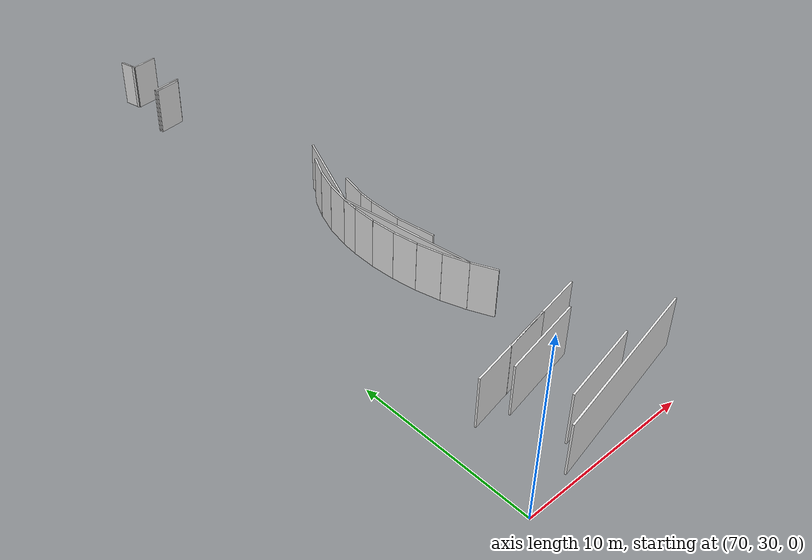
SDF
<sdf version="1.6">
 <world name="default">
  <model name="wall_78.1_50.1">
   <static>true</static>
   <pose>78.11000000001513 50.10499999998137 1.5 0 0 1.3352513460828392</pose>
   <link name="link">
    <visual name="visual">
     <geometry><box><size>1.7996944185017383 0.1 3</size></box></geometry>
     <material>
      <script><uri>file://media/materials/scripts/gazebo.material</uri><name>Gazebo/White</name></script>
     </material>
    </visual>
   </link>
  </model>
  <model name="wall_77.9_45.0">
   <static>true</static>
   <pose>77.91500000000815 45.0 1.5 0 0 1.7025079936748562</pose>
   <link name="link">
    <visual name="visual">
     <geometry><box><size>2.360444873175644 0.1 3</size></box></geometry>
     <material>
      <script><uri>file://media/materials/scripts/gazebo.material</uri><name>Gazebo/White</name></script>
     </material>
    </visual>
   </link>
  </model>
  <model name="wall_77.8_47.2">
   <static>true</static>
   <pose>77.77999999999884 47.21499999985099 1.5 0 0 1.5516599071002037</pose>
   <link name="link">
    <visual name="visual">
     <geometry><box><size>2.090382739924786 0.1 3</size></box></geometry>
     <material>
      <script><uri>file://media/materials/scripts/gazebo.material</uri><name>Gazebo/White</name></script>
     </material>
    </visual>
   </link>
  </model>
  <model name="wall_77.9_48.7">
   <static>true</static>
   <pose>77.85000000000582 48.74499999987893 1.5 0 0 1.4680664593621482</pose>
   <link name="link">
    <visual name="visual">
     <geometry><box><size>0.9751410156507998 0.1 3</size></box></geometry>
     <material>
      <script><uri>file://media/materials/scripts/gazebo.material</uri><name>Gazebo/White</name></script>
     </material>
    </visual>
   </link>
  </model>
  <model name="wall_76.6_71.3">
   <static>true</static>
   <pose>76.56999999997788 71.3499999998603 1.5 0 0 -1.3694792184051279</pose>
   <link name="link">
    <visual name="visual">
     <geometry><box><size>1.0001999799880765 0.1 3</size></box></geometry>
     <material>
      <script><uri>file://media/materials/scripts/gazebo.material</uri><name>Gazebo/White</name></script>
     </material>
    </visual>
   </link>
  </model>
  <model name="wall_76.7_70.8">
   <static>true</static>
   <pose>76.69000000000233 70.76499999989755 1.5 0 0 -1.3633001001126588</pose>
   <link name="link">
    <visual name="visual">
     <geometry><box><size>0.19416487834246976 0.1 3</size></box></geometry>
     <material>
      <script><uri>file://media/materials/scripts/gazebo.material</uri><name>Gazebo/White</name></script>
     </material>
    </visual>
   </link>
  </model>
  <model name="wall_77.6_70.8">
   <static>true</static>
   <pose>77.57000000000698 70.83999999985099 1.5 0 0 0.1951584270363837</pose>
   <link name="link">
    <visual name="visual">
     <geometry><box><size>1.7532826354591435 0.1 3</size></box></geometry>
     <material>
      <script><uri>file://media/materials/scripts/gazebo.material</uri><name>Gazebo/White</name></script>
     </material>
    </visual>
   </link>
  </model>
  <model name="wall_76.9_67.2">
   <static>true</static>
   <pose>76.94999999998254 67.18999999994412 1.5 0 0 -2.9481653269346513</pose>
   <link name="link">
    <visual name="visual">
     <geometry><box><size>1.976866206885053 0.1 3</size></box></geometry>
     <material>
      <script><uri>file://media/materials/scripts/gazebo.material</uri><name>Gazebo/White</name></script>
     </material>
    </visual>
   </link>
  </model>
  <model name="wall_76.9_32.1">
   <static>true</static>
   <pose>76.87999999997555 32.14500000001863 1.5 0 0 -2.948381169699356</pose>
   <link name="link">
    <visual name="visual">
     <geometry><box><size>5.155938323954138 0.1 3</size></box></geometry>
     <material>
      <script><uri>file://media/materials/scripts/gazebo.material</uri><name>Gazebo/White</name></script>
     </material>
    </visual>
   </link>
  </model>
  <model name="wall_76.3_35.0">
   <static>true</static>
   <pose>76.31500000000233 34.97500000009313 1.5 0 0 0.1935846027304586</pose>
   <link name="link">
    <visual name="visual">
     <geometry><box><size>5.146124755669345 0.1 3</size></box></geometry>
     <material>
      <script><uri>file://media/materials/scripts/gazebo.material</uri><name>Gazebo/White</name></script>
     </material>
    </visual>
   </link>
  </model>
  <model name="wall_76.9_67.0">
   <static>true</static>
   <pose>76.90000000002328 66.96999999997206 1.5 0 0 0.19297081014186676</pose>
   <link name="link">
    <visual name="visual">
     <geometry><box><size>1.77290721702601 0.1 3</size></box></geometry>
     <material>
      <script><uri>file://media/materials/scripts/gazebo.material</uri><name>Gazebo/White</name></script>
     </material>
    </visual>
   </link>
  </model>
  <model name="wall_78.0_53.0">
   <static>true</static>
   <pose>78.0 53.02000000001863 1.5 0 0 -2.0286300478758363</pose>
   <link name="link">
    <visual name="visual">
     <geometry><box><size>1.538440769012967 0.1 3</size></box></geometry>
     <material>
      <script><uri>file://media/materials/scripts/gazebo.material</uri><name>Gazebo/White</name></script>
     </material>
    </visual>
   </link>
  </model>
  <model name="wall_77.4_51.6">
   <static>true</static>
   <pose>77.40499999999884 51.610000000102445 1.5 0 0 -1.9111782654188452</pose>
   <link name="link">
    <visual name="visual">
     <geometry><box><size>1.527645246707885 0.1 3</size></box></geometry>
     <material>
      <script><uri>file://media/materials/scripts/gazebo.material</uri><name>Gazebo/White</name></script>
     </material>
    </visual>
   </link>
  </model>
  <model name="wall_77.0_50.1">
   <static>true</static>
   <pose>76.98500000001513 50.140000000130385 1.5 0 0 -1.7873466317813498</pose>
   <link name="link">
    <visual name="visual">
     <geometry><box><size>1.5358710883439264 0.1 3</size></box></geometry>
     <material>
      <script><uri>file://media/materials/scripts/gazebo.material</uri><name>Gazebo/White</name></script>
     </material>
    </visual>
   </link>
  </model>
  <model name="wall_76.8_48.9">
   <static>true</static>
   <pose>76.76000000000931 48.875 1.5 0 0 -1.6867783112416597</pose>
   <link name="link">
    <visual name="visual">
     <geometry><box><size>1.0369667306794703 0.1 3</size></box></geometry>
     <material>
      <script><uri>file://media/materials/scripts/gazebo.material</uri><name>Gazebo/White</name></script>
     </material>
    </visual>
   </link>
  </model>
  <model name="wall_76.7_47.6">
   <static>true</static>
   <pose>76.6700000000128 47.61499999999069 1.5 0 0 -1.6110430385750105</pose>
   <link name="link">
    <visual name="visual">
     <geometry><box><size>1.4912075641164553 0.1 3</size></box></geometry>
     <material>
      <script><uri>file://media/materials/scripts/gazebo.material</uri><name>Gazebo/White</name></script>
     </material>
    </visual>
   </link>
  </model>
  <model name="wall_76.7_46.1">
   <static>true</static>
   <pose>76.67999999999302 46.11499999999069 1.5 0 0 -1.5178656809449116</pose>
   <link name="link">
    <visual name="visual">
     <geometry><box><size>1.5121177205246188 0.1 3</size></box></geometry>
     <material>
      <script><uri>file://media/materials/scripts/gazebo.material</uri><name>Gazebo/White</name></script>
     </material>
    </visual>
   </link>
  </model>
  <model name="wall_76.8_44.6">
   <static>true</static>
   <pose>76.8299999999872 44.609999999869615 1.5 0 0 -1.4251679462043203</pose>
   <link name="link">
    <visual name="visual">
     <geometry><box><size>1.5160474926641705 0.1 3</size></box></geometry>
     <material>
      <script><uri>file://media/materials/scripts/gazebo.material</uri><name>Gazebo/White</name></script>
     </material>
    </visual>
   </link>
  </model>
  <model name="wall_77.1_43.1">
   <static>true</static>
   <pose>77.11999999999534 43.125 1.5 0 0 -1.3306253189027035</pose>
   <link name="link">
    <visual name="visual">
     <geometry><box><size>1.513439790418924 0.1 3</size></box></geometry>
     <material>
      <script><uri>file://media/materials/scripts/gazebo.material</uri><name>Gazebo/White</name></script>
     </material>
    </visual>
   </link>
  </model>
  <model name="wall_77.5_41.7">
   <static>true</static>
   <pose>77.54999999998836 41.675000000046566 1.5 0 0 -1.2344330339143665</pose>
   <link name="link">
    <visual name="visual">
     <geometry><box><size>1.5148927356349178 0.1 3</size></box></geometry>
     <material>
      <script><uri>file://media/materials/scripts/gazebo.material</uri><name>Gazebo/White</name></script>
     </material>
    </visual>
   </link>
  </model>
  <model name="wall_78.1_40.3">
   <static>true</static>
   <pose>78.11499999999069 40.27499999990687 1.5 0 0 -1.1397780825490453</pose>
   <link name="link">
    <visual name="visual">
     <geometry><box><size>1.507912464406368 0.1 3</size></box></geometry>
     <material>
      <script><uri>file://media/materials/scripts/gazebo.material</uri><name>Gazebo/White</name></script>
     </material>
    </visual>
   </link>
  </model>
  <model name="wall_76.1_35.8">
   <static>true</static>
   <pose>76.14999999999418 35.79000000003725 1.5 0 0 -2.9468148887829875</pose>
   <link name="link">
    <visual name="visual">
     <geometry><box><size>2.996664812771044 0.1 3</size></box></geometry>
     <material>
      <script><uri>file://media/materials/scripts/gazebo.material</uri><name>Gazebo/White</name></script>
     </material>
    </visual>
   </link>
  </model>
  <model name="wall_78.0_31.5">
   <static>true</static>
   <pose>78.02499999999418 31.540000000037253 1.5 0 0 0.19417892004540582</pose>
   <link name="link">
    <visual name="visual">
     <geometry><box><size>10.364791363055433 0.1 3</size></box></geometry>
     <material>
      <script><uri>file://media/materials/scripts/gazebo.material</uri><name>Gazebo/White</name></script>
     </material>
    </visual>
   </link>
  </model>
  <model name="wall_76.2_35.8">
   <static>true</static>
   <pose>76.22000000000116 35.81500000017695 1.5 0 0 0.19577706414235704</pose>
   <link name="link">
    <visual name="visual">
     <geometry><box><size>8.482033954176845 0.1 3</size></box></geometry>
     <material>
      <script><uri>file://media/materials/scripts/gazebo.material</uri><name>Gazebo/White</name></script>
     </material>
    </visual>
   </link>
  </model>
  <model name="wall_77.3_45.2">
   <static>true</static>
   <pose>77.30999999999767 45.175000000046566 1.5 0 0 1.686528325479706</pose>
   <link name="link">
    <visual name="visual">
     <geometry><box><size>8.486772060258827 0.1 3</size></box></geometry>
     <material>
      <script><uri>file://media/materials/scripts/gazebo.material</uri><name>Gazebo/White</name></script>
     </material>
    </visual>
   </link>
  </model>
  <model name="wall_78.0_52.2">
   <static>true</static>
   <pose>78.00500000000466 52.19000000017695 1.5 0 0 1.1704391671759413</pose>
   <link name="link">
    <visual name="visual">
     <geometry><box><size>6.080863425618191 0.1 3</size></box></geometry>
     <material>
      <script><uri>file://media/materials/scripts/gazebo.material</uri><name>Gazebo/White</name></script>
     </material>
    </visual>
   </link>
  </model>
 </world>
</sdf>
